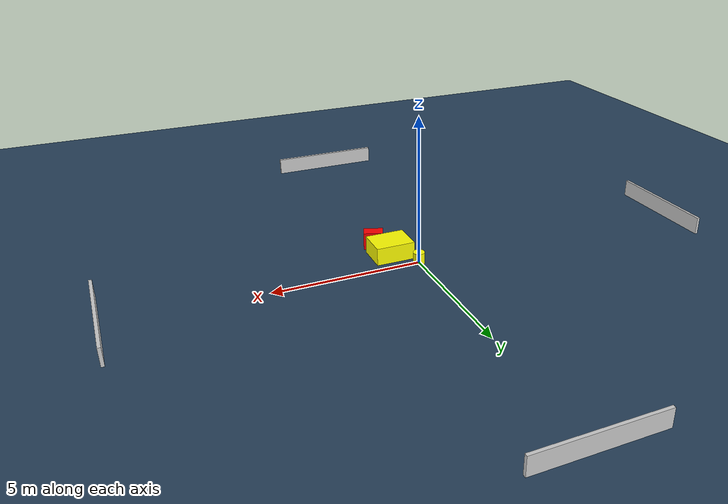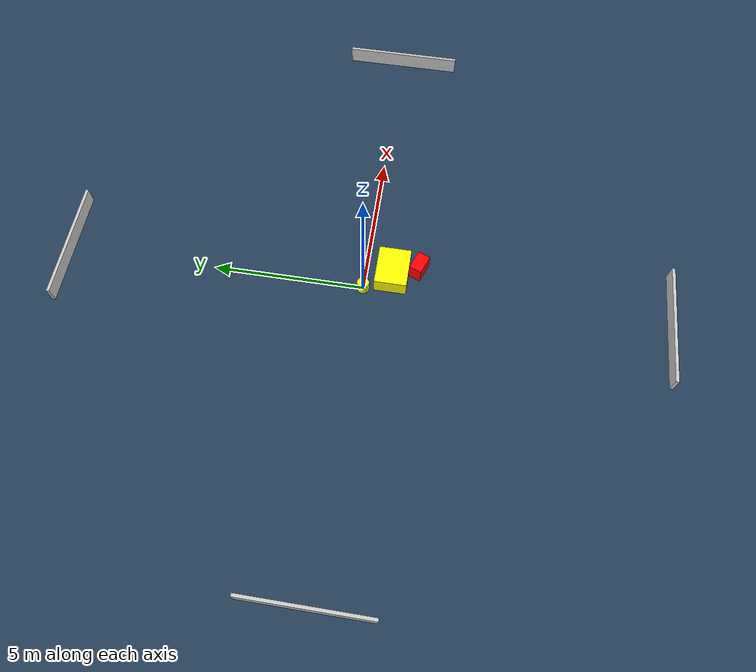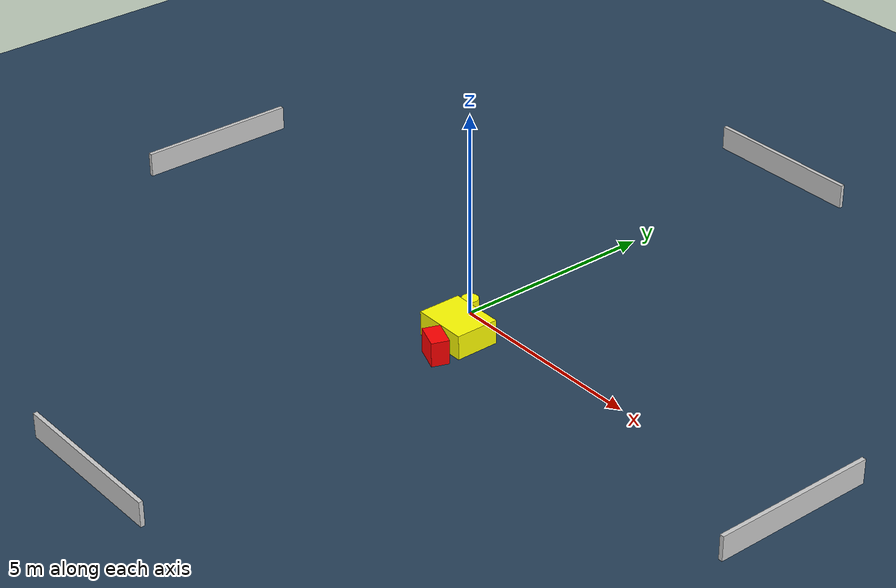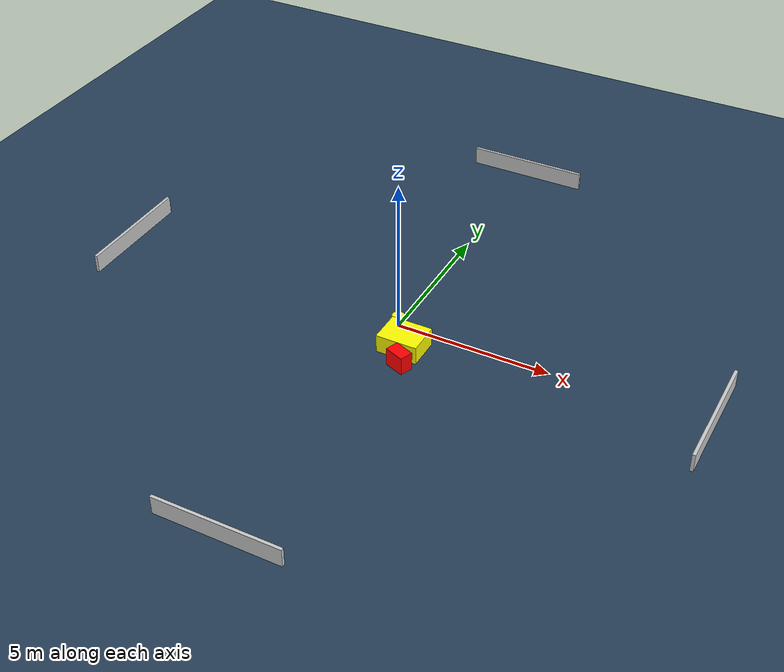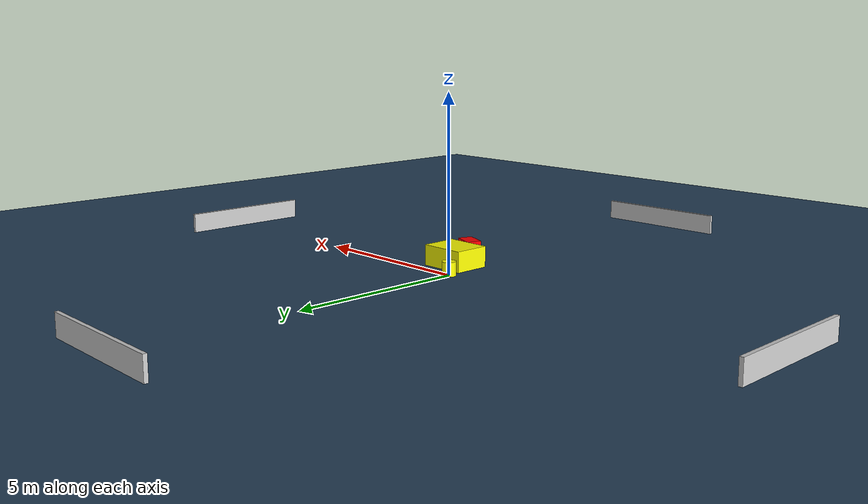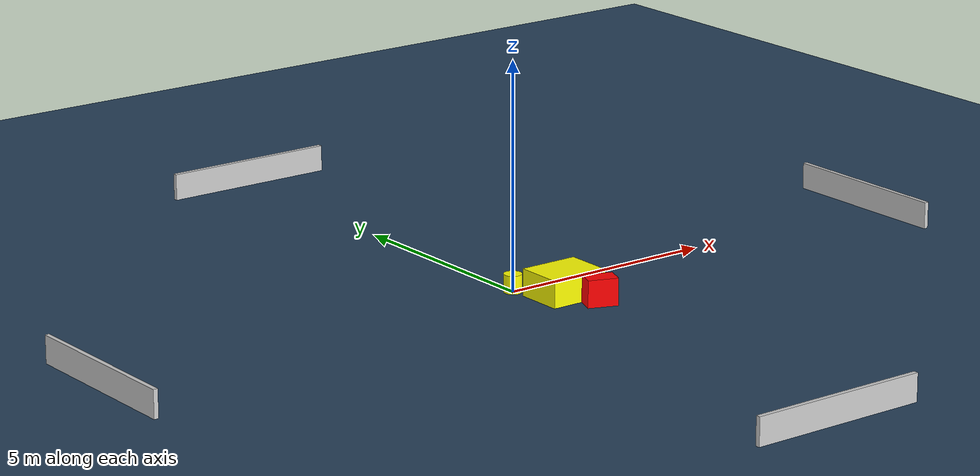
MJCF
<?xml version="1.0" ?>
<mujoco model="generated_environment">
  <option timestep="0.01" integrator="RK4" cone="elliptic"/>
  <default>
    <geom density="1"/>
  </default>
  <asset>
    <texture builtin="gradient" height="3072" name="skybox" rgb1="0.3 0.5 0.7" rgb2="0 0 0" type="skybox" width="512"/>
    <texture builtin="checker" height="300" name="groundplane" rgb1="0.2 0.3 0.4" rgb2="0.1 0.2 0.3" type="2d" width="300"/>
    <material name="groundplane" reflectance="0.2" texrepeat="5 5" texture="groundplane"/>
  </asset>
  <worldbody>
    <light dir="0 0 -1" directional="true" pos="0 0 1.5"/>
    <geom condim="3" friction="0.5 0.005 0.001" material="groundplane" name="floor" pos="0 0 0" size="0 0 0.05" type="plane"/>
    <body name="walls">
      <geom name="wall_1" condim="4" pos="-10.0 0.0 0.3" rgba="0.800000011920929 0.800000011920929 0.800000011920929 1.0" size="0.05 2.0 0.3" type="box"/>
      <geom name="wall_2" condim="4" pos="10.0 0.0 0.3" rgba="0.800000011920929 0.800000011920929 0.800000011920929 1.0" size="0.05 2.0 0.3" type="box"/>
      <geom name="wall_3" condim="4" pos="0.0 -10.0 0.3" rgba="0.800000011920929 0.800000011920929 0.800000011920929 1.0" size="2.0 0.05 0.3" type="box"/>
      <geom name="wall_4" condim="4" pos="0.0 10.0 0.3" rgba="0.800000011920929 0.800000011920929 0.800000011920929 1.0" size="2.0 0.05 0.3" type="box"/>
    </body>
    <body name="robot">
      <joint name="joint_x" type="slide" pos="0 0 0" axis="1 0 0"/>
      <joint name="joint_y" type="slide" pos="0 0 0" axis="0 1 0"/>
      <geom name="robot" type="cylinder" pos="0.0 0.0 0.2" size="0.2 0.2 0.0" mass="5.0" friction="1.0 0.005 0.0001" condim="4" rgba="1.0 1.0 0.0 1.0"/>
    </body>
    <body name="obstacle_1_movable">
      <geom name="obstacle_1_movable" condim="4" pos="0.6611565946423281 -0.8883304539167599 0.3" euler="0 0 179.7795645034899" friction="0.0 0.005 0.001" rgba="1.0 1.0 0.0 1.0" size="0.6672899225806546 0.5336587315856449 0.3" type="box" mass="0.1"/>
      <joint type="free"/>
    </body>
    <body name="obstacle_2_static">
      <geom name="obstacle_2_static" condim="4" pos="0.9374759254622814 -1.7434722639781384 0.3" euler="0 0 339.0631828991452" friction="0.0 0.005 0.001" rgba="1.0 0.0 0.0 1.0" size="0.33123771657666934 0.21251741383690514 0.3" type="box"/>
    </body>
  </worldbody>
  <actuator>
    <motor name="actuator_x" joint="joint_x" gear="1" ctrlrange="-1 1"/>
    <motor name="actuator_y" joint="joint_y" gear="1" ctrlrange="-1 1"/>
  </actuator>
</mujoco>
